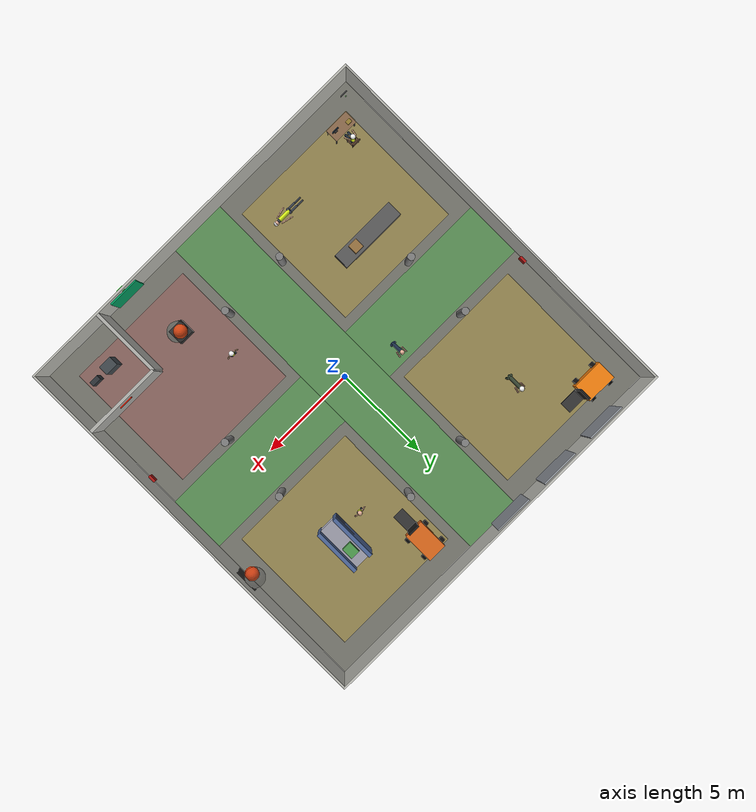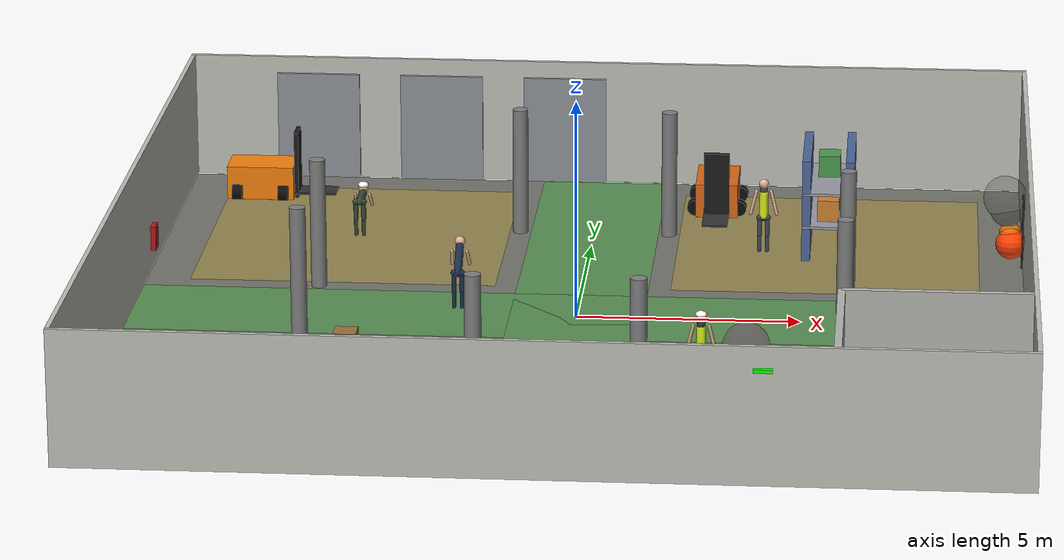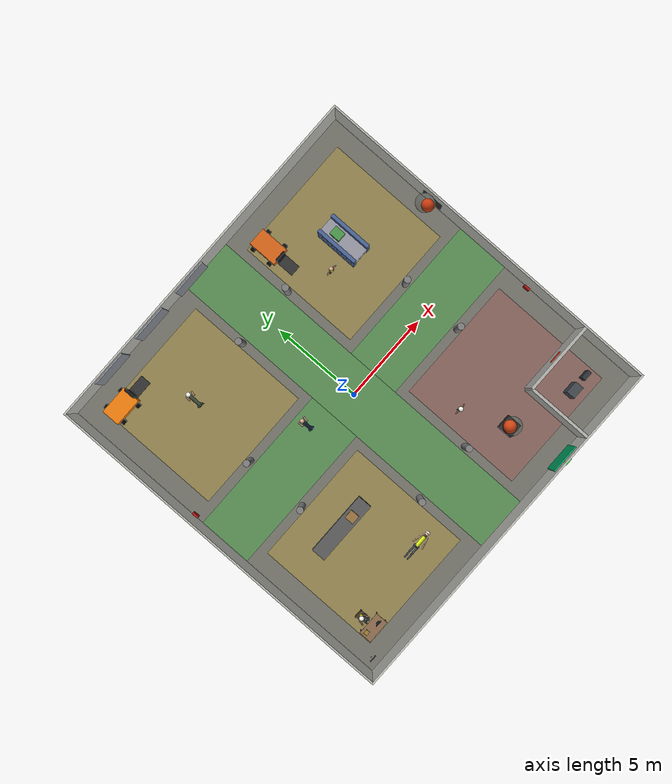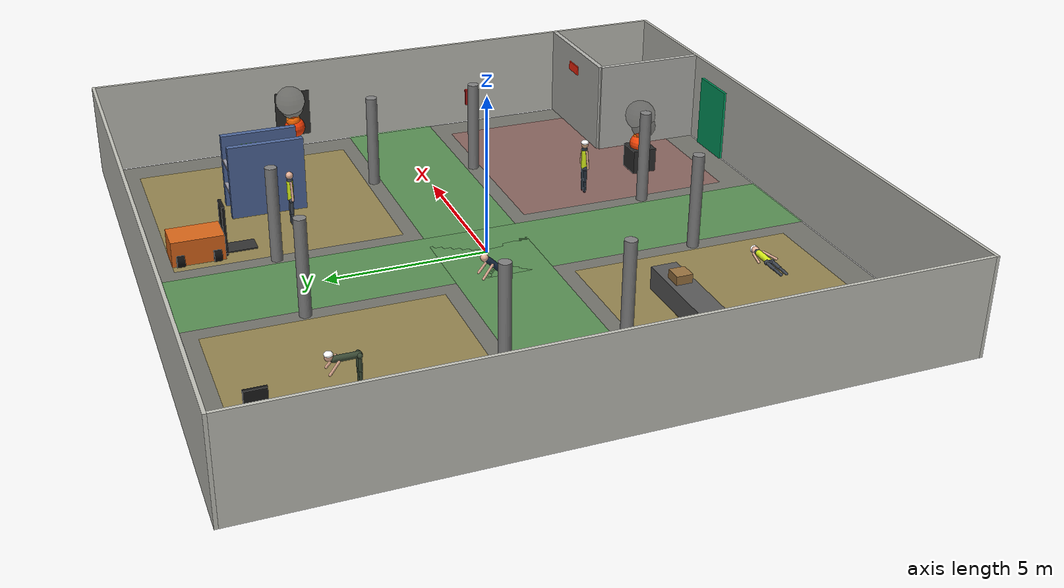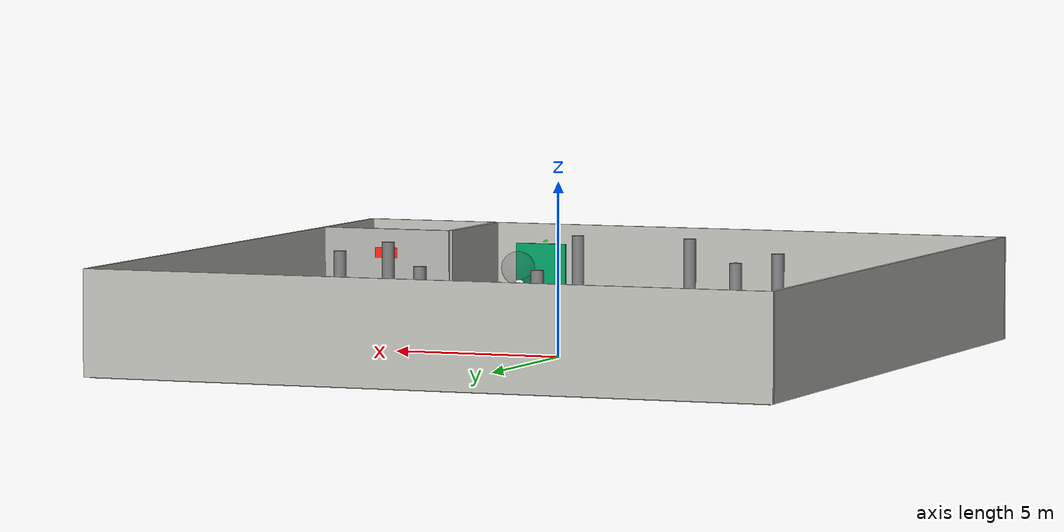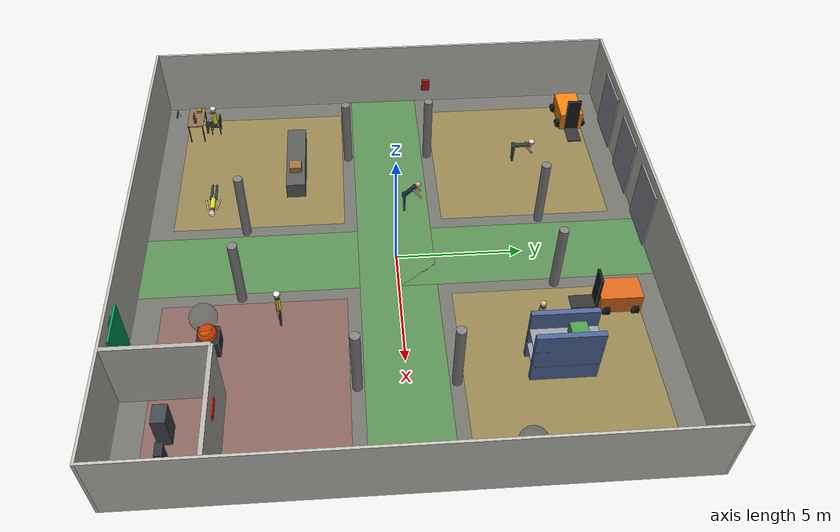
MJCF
<mujoco model="industrial_factory_20x20_v3">
    <compiler inertiafromgeom="true"/>

    <worldbody>
        <!-- ================================================================
             1. 공장 바닥, 조명 및 십자형 안전 보행로 (20x20m)
             ================================================================ -->
        <geom name="floor" type="plane" size="10 10 0.1" rgba="0.45 0.45 0.42 1" friction="1.0 0.005 0.0001"/>

        <light directional="true" diffuse=".8 .8 .8" specular=".3 .3 .3" pos="0 0 8" dir="0 0 -1"/>
        <light directional="false" diffuse=".4 .4 .4" specular=".1 .1 .1" pos="6 6 5" dir="-0.3 -0.3 -1"/>
        <light directional="false" diffuse=".4 .4 .4" specular=".1 .1 .1" pos="-6 6 5" dir="0.3 -0.3 -1"/>
        <light directional="false" diffuse=".4 .4 .4" specular=".1 .1 .1" pos="-6 -6 5" dir="0.3 0.3 -1"/>
        <light directional="false" diffuse=".4 .4 .4" specular=".1 .1 .1" pos="6 -6 5" dir="-0.3 0.3 -1"/>

        <!-- 십자형 메인 안전 보행로 & 차로 -->
        <geom name="walkway_cross_y" type="box" size="1.5 10.0 0.001" pos="0 0 0.001" rgba="0.2 0.8 0.2 0.35" contype="0" conaffinity="0"/>
        <geom name="walkway_cross_x" type="box" size="10.0 1.5 0.001" pos="0 0 0.001" rgba="0.2 0.8 0.2 0.35" contype="0" conaffinity="0"/>

        <!-- 구역 구획선 -->
        <geom name="zone_nw_inbound" type="box" size="3.5 3.5 0.001" pos="-5.5 5.5 0.001" rgba="0.92 0.72 0.1 0.3" contype="0" conaffinity="0"/>
        <geom name="zone_ne_warehouse" type="box" size="3.5 3.5 0.001" pos="5.5 5.5 0.001" rgba="0.92 0.72 0.1 0.3" contype="0" conaffinity="0"/>
        <geom name="zone_sw_production" type="box" size="3.5 3.5 0.001" pos="-5.5 -5.5 0.001" rgba="0.92 0.72 0.1 0.3" contype="0" conaffinity="0"/>
        <geom name="zone_se_utility" type="box" size="3.5 3.5 0.001" pos="5.5 -5.5 0.001" rgba="0.9 0.2 0.2 0.2" contype="0" conaffinity="0"/>

        <!-- ================================================================
             2. 외벽 및 구조 기둥 (8개 균등 배치)
             ================================================================ -->
        <geom name="wall_north" type="box" size="10.1 0.05 1.5" pos="0 10.05 1.5" rgba="0.75 0.75 0.72 1"/>
        <geom name="wall_south" type="box" size="10.1 0.05 1.5" pos="0 -10.05 1.5" rgba="0.75 0.75 0.72 1"/>
        <geom name="wall_east" type="box" size="0.05 10.0 1.5" pos="10.05 0 1.5" rgba="0.75 0.75 0.72 1"/>
        <geom name="wall_west" type="box" size="0.05 10.0 1.5" pos="-10.05 0 1.5" rgba="0.75 0.75 0.72 1"/>

        <body name="column_1" pos="-6 1.75 0"><geom type="cylinder" size="0.18 1.5" pos="0 0 1.5" rgba="0.5 0.5 0.5 1" mass="100"/></body>
        <body name="column_2" pos="-1.75 6 0"><geom type="cylinder" size="0.18 1.5" pos="0 0 1.5" rgba="0.5 0.5 0.5 1" mass="100"/></body>
        <body name="column_3" pos="1.75 6 0"><geom type="cylinder" size="0.18 1.5" pos="0 0 1.5" rgba="0.5 0.5 0.5 1" mass="100"/></body>
        <body name="column_4" pos="6 1.75 0"><geom type="cylinder" size="0.18 1.5" pos="0 0 1.5" rgba="0.5 0.5 0.5 1" mass="100"/></body>
        <body name="column_5" pos="-6 -1.75 0"><geom type="cylinder" size="0.18 1.5" pos="0 0 1.5" rgba="0.5 0.5 0.5 1" mass="100"/></body>
        <body name="column_6" pos="-1.75 -6 0"><geom type="cylinder" size="0.18 1.5" pos="0 0 1.5" rgba="0.5 0.5 0.5 1" mass="100"/></body>
        <body name="column_7" pos="1.75 -6 0"><geom type="cylinder" size="0.18 1.5" pos="0 0 1.5" rgba="0.5 0.5 0.5 1" mass="100"/></body>
        <body name="column_8" pos="6 -1.75 0"><geom type="cylinder" size="0.18 1.5" pos="0 0 1.5" rgba="0.5 0.5 0.5 1" mass="100"/></body>

        <!-- ================================================================
             3. 물류 인프라, 로봇 충전 스테이션 & 지게차 2대
             ================================================================ -->
        <!-- 로봇 충전 스테이션 -->
        <body name="charging_station" pos="-9.5 -9.5 0">
            <geom name="station_body" type="box" size="0.2 0.02 0.075" pos="0 -0.13 0.075" rgba="0.3 0.3 0.3 1" mass="2.0"/>
            <site name="docking_port" pos="0 0 0.01" size="0.03" rgba="0 1 0 0.3"/>
        </body>

        <!-- 하역장 셔터 도어 -->
        <body name="dock_door_1" pos="-7 10 0"><geom type="box" size="1.0 0.08 1.3" pos="0 0 1.3" rgba="0.55 0.57 0.6 1"/></body>
        <body name="dock_door_2" pos="-4 10 0"><geom type="box" size="1.0 0.08 1.3" pos="0 0 1.3" rgba="0.55 0.57 0.6 1"/></body>
        <body name="dock_door_3" pos="-1 10 0"><geom type="box" size="1.0 0.08 1.3" pos="0 0 1.3" rgba="0.55 0.57 0.6 1"/></body>

        <!-- 지게차 1 (NW) -->
        <body name="forklift_1" pos="-8.2 8.5 0">
            <freejoint name="fl1_freejoint"/>
            <inertial pos="0 0 0.5" mass="260" diaginertia="100 100 100"/>
            <geom name="fl1_body" type="box" size="0.8 0.5 0.4" pos="0 0 0.4" rgba="0.95 0.5 0.05 1"/>
            <geom name="fl1_fork" type="box" size="0.5 0.3 0.02" pos="1.3 0 0.1" rgba="0.2 0.2 0.2 1"/>
            <geom name="fl1_mast" type="box" size="0.05 0.3 0.8" pos="0.85 0 0.8" rgba="0.1 0.1 0.1 1"/>
            <geom name="fl1_wheel_fl" type="cylinder" size="0.18 0.12" pos="0.55 0.52 0.18" quat="0.7071 0 0.7071 0" rgba="0.05 0.05 0.05 1"/>
            <geom name="fl1_wheel_fr" type="cylinder" size="0.18 0.12" pos="0.55 -0.52 0.18" quat="0.7071 0 0.7071 0" rgba="0.05 0.05 0.05 1"/>
            <geom name="fl1_wheel_rl" type="cylinder" size="0.18 0.12" pos="-0.55 0.52 0.18" quat="0.7071 0 0.7071 0" rgba="0.05 0.05 0.05 1"/>
            <geom name="fl1_wheel_rr" type="cylinder" size="0.18 0.12" pos="-0.55 -0.52 0.18" quat="0.7071 0 0.7071 0" rgba="0.05 0.05 0.05 1"/>
        </body>

        <!-- 지게차 2 (NE) -->
        <body name="forklift_2" pos="2.8 8.2 0" quat="0.7071 0 0 -0.7071">
            <freejoint name="fl2_freejoint"/>
            <inertial pos="0 0 0.5" mass="260" diaginertia="100 100 100"/>
            <geom name="fl2_body" type="box" size="0.8 0.5 0.4" pos="0 0 0.4" rgba="0.85 0.4 0.1 1"/>
            <geom name="fl2_fork" type="box" size="0.5 0.3 0.02" pos="1.3 0 0.1" rgba="0.2 0.2 0.2 1"/>
            <geom name="fl2_mast" type="box" size="0.05 0.3 0.8" pos="0.85 0 0.8" rgba="0.1 0.1 0.1 1"/>
            <geom name="fl2_wheel_fl" type="cylinder" size="0.18 0.12" pos="0.55 0.52 0.18" quat="0.7071 0 0.7071 0" rgba="0.05 0.05 0.05 1"/>
            <geom name="fl2_wheel_fr" type="cylinder" size="0.18 0.12" pos="0.55 -0.52 0.18" quat="0.7071 0 0.7071 0" rgba="0.05 0.05 0.05 1"/>
            <geom name="fl2_wheel_rl" type="cylinder" size="0.18 0.12" pos="-0.55 0.52 0.18" quat="0.7071 0 0.7071 0" rgba="0.05 0.05 0.05 1"/>
            <geom name="fl2_wheel_rr" type="cylinder" size="0.18 0.12" pos="-0.55 -0.52 0.18" quat="0.7071 0 0.7071 0" rgba="0.05 0.05 0.05 1"/>
        </body>

        <!-- 파렛트 랙 -->
        <body name="pallet_rack_1" pos="5.5 5.5 0">
            <geom type="box" size="0.1 1.2 1.2" pos="-0.5 0 1.2" rgba="0.3 0.4 0.6 1"/>
            <geom type="box" size="0.1 1.2 1.2" pos="0.5 0 1.2" rgba="0.3 0.4 0.6 1"/>
            <geom type="box" size="0.6 1.2 0.03" pos="0 0 0.8" rgba="0.6 0.6 0.65 1"/>
            <geom type="box" size="0.6 1.2 0.03" pos="0 0 1.6" rgba="0.6 0.6 0.65 1"/>
            <geom type="box" size="0.25 0.3 0.25" pos="0 -0.5 1.08" rgba="0.8 0.5 0.2 1"/>
            <geom type="box" size="0.25 0.3 0.25" pos="0 0.4 1.88" rgba="0.3 0.6 0.3 1"/>
        </body>

        <!-- ================================================================
             4. 책상, 의자, 앉아있는 작업자 세트
             ================================================================ -->
        <body name="workbench_0" pos="-8.2 -8.5 0">
            <geom name="wb0_top" type="box" size="0.65 0.35 0.02" pos="0 0 0.90" rgba="0.55 0.42 0.30 1" mass="20.0"/>
            <geom name="wb0_leg_fl" type="cylinder" size="0.025 0.45" pos="-0.60 -0.30 0.45" rgba="0.40 0.40 0.40 1" mass="3.0"/>
            <geom name="wb0_leg_fr" type="cylinder" size="0.025 0.45" pos="0.60 -0.30 0.45" rgba="0.40 0.40 0.40 1" mass="3.0"/>
            <geom name="wb0_leg_bl" type="cylinder" size="0.025 0.45" pos="-0.60 0.30 0.45" rgba="0.40 0.40 0.40 1" mass="3.0"/>
            <geom name="wb0_leg_br" type="cylinder" size="0.025 0.45" pos="0.60 0.30 0.45" rgba="0.40 0.40 0.40 1" mass="3.0"/>
            <geom name="wb0_tool_box" type="box" size="0.12 0.10 0.06" pos="-0.40 0.10 0.98" rgba="0.60 0.50 0.20 1" mass="2.0"/>
            <geom name="wb0_monitor_base" type="box" size="0.08 0.05 0.10" pos="0.35 0 0.98" rgba="0.20 0.20 0.20 1" mass="1.5"/>
            <geom name="wb0_monitor_screen" type="box" size="0.18 0.02 0.14" pos="0.35 -0.03 1.16" rgba="0.10 0.15 0.20 1" mass="3.0"/>
        </body>

        <body name="chair_0" pos="-8.2 -7.7 0">
            <geom name="ch0_seat" type="box" size="0.22 0.22 0.025" pos="0 0 0.47" rgba="0.35 0.25 0.18 1" mass="4.0"/>
            <geom name="ch0_back" type="box" size="0.22 0.025 0.20" pos="0 0.22 0.68" rgba="0.35 0.25 0.18 1" mass="3.0"/>
            <geom name="ch0_leg_fl" type="cylinder" size="0.018 0.235" pos="-0.19 -0.19 0.235" rgba="0.30 0.30 0.30 1" mass="1.0"/>
            <geom name="ch0_leg_fr" type="cylinder" size="0.018 0.235" pos="0.19 -0.19 0.235" rgba="0.30 0.30 0.30 1" mass="1.0"/>
            <geom name="ch0_leg_bl" type="cylinder" size="0.018 0.235" pos="-0.19 0.19 0.235" rgba="0.30 0.30 0.30 1" mass="1.0"/>
            <geom name="ch0_leg_br" type="cylinder" size="0.018 0.235" pos="0.19 0.19 0.235" rgba="0.30 0.30 0.30 1" mass="1.0"/>
        </body>

        <body name="worker_seated" pos="-8.2 -7.7 0">
            <geom name="ws_pelvis" type="capsule" fromto="-0.09 0 0.50 0.09 0 0.50" size="0.075" rgba="0.15 0.20 0.25 1" mass="8.0"/>
            <geom name="ws_luleg" type="capsule" fromto="-0.09 0 0.50 -0.09 -0.40 0.50" size="0.055" rgba="0.15 0.20 0.25 1" mass="8.0"/>
            <geom name="ws_llleg" type="capsule" fromto="-0.09 -0.40 0.50 -0.09 -0.40 0.08" size="0.045" rgba="0.15 0.20 0.25 1" mass="4.0"/>
            <geom name="ws_ruleg" type="capsule" fromto="0.09 0 0.50 0.09 -0.40 0.50" size="0.055" rgba="0.15 0.20 0.25 1" mass="8.0"/>
            <geom name="ws_rlleg" type="capsule" fromto="0.09 -0.40 0.50 0.09 -0.40 0.08" size="0.045" rgba="0.15 0.20 0.25 1" mass="4.0"/>
            <geom name="ws_torso" type="capsule" fromto="0 0 0.52 0 0 1.15" size="0.092" rgba="0.15 0.20 0.25 1" mass="30.0"/>
            <geom name="ws_vest" type="capsule" fromto="0 0 0.54 0 0 1.10" size="0.100" rgba="0.85 0.95 0.10 0.90" mass="0.1" contype="0" conaffinity="0"/>
            <geom name="ws_head" type="sphere" size="0.115" pos="0 0 1.28" rgba="0.82 0.65 0.50 1" mass="5.0"/>
            <geom name="ws_helmet" type="ellipsoid" size="0.125 0.125 0.075" pos="0 0 1.36" rgba="1.0 1.0 1.0 1" mass="0.5" contype="0" conaffinity="0"/>
            <geom name="ws_larm" type="capsule" fromto="-0.17 0 1.10 -0.25 -0.30 0.92" size="0.037" rgba="0.82 0.65 0.50 1" mass="4.0"/>
            <geom name="ws_rarm" type="capsule" fromto="0.17 0 1.10 0.25 -0.30 0.92" size="0.037" rgba="0.82 0.65 0.50 1" mass="4.0"/>
        </body>

        <!-- ================================================================
             5. 작업자 조건 세분화 반영 (총 5명)
             ================================================================ -->
        <!-- 0) 정상 PPE 작업자: 안전모 O, 조끼 O -->
        <body name="worker_normal" pos="3 -4.5 0">
            <geom name="wn_head" type="sphere" size="0.115" pos="0 0 1.62" rgba="0.82 0.65 0.50 1" mass="5.0"/>
            <geom name="wn_helmet" type="ellipsoid" size="0.125 0.125 0.075" pos="0 0 1.70" rgba="1.0 1.0 1.0 1" mass="0.5"/>
            <geom name="wn_torso" type="capsule" fromto="0 0 0.82 0 0 1.48" size="0.092" rgba="0.15 0.20 0.25 1" mass="30.0"/>
            <geom name="wn_vest" type="capsule" fromto="0 0 0.84 0 0 1.40" size="0.100" rgba="0.85 0.95 0.10 0.90" mass="0.1" contype="0" conaffinity="0"/>
            <geom name="wn_pelvis" type="capsule" fromto="-0.09 0 0.80 0.09 0 0.80" size="0.075" rgba="0.15 0.20 0.25 1" mass="8.0"/>
            <geom name="wn_luleg" type="capsule" fromto="-0.09 0 0.80 -0.09 0 0.38" size="0.055" rgba="0.15 0.20 0.25 1" mass="8.0"/>
            <geom name="wn_llleg" type="capsule" fromto="-0.09 0 0.38 -0.09 0 0.00" size="0.045" rgba="0.15 0.20 0.25 1" mass="4.0"/>
            <geom name="wn_ruleg" type="capsule" fromto="0.09 0 0.80 0.09 0 0.38" size="0.055" rgba="0.15 0.20 0.25 1" mass="8.0"/>
            <geom name="wn_rlleg" type="capsule" fromto="0.09 0 0.38 0.09 0 0.00" size="0.045" rgba="0.15 0.20 0.25 1" mass="4.0"/>
            <geom name="wn_larm" type="capsule" fromto="-0.17 0 1.44 -0.30 0 0.90" size="0.037" rgba="0.82 0.65 0.50 1" mass="4.0"/>
            <geom name="wn_rarm" type="capsule" fromto="0.17 0 1.44 0.30 0 0.90" size="0.037" rgba="0.82 0.65 0.50 1" mass="4.0"/>
        </body>

        <!-- 1) 불량 PPE 작업자: 안전모 X, 조끼 O -->
        <body name="worker_bad_ppe" pos="4 5 0">
            <geom name="wp_head" type="sphere" size="0.115" pos="0 0 1.62" rgba="0.90 0.70 0.60 1" mass="5.0"/>
            <geom name="wp_torso" type="capsule" fromto="0 0 0.82 0 0 1.48" size="0.092" rgba="0.25 0.28 0.32 1" mass="30.0"/>
            <geom name="wp_vest" type="capsule" fromto="0 0 0.84 0 0 1.40" size="0.100" rgba="0.85 0.95 0.10 0.90" mass="0.1" contype="0" conaffinity="0"/>
            <geom name="wp_pelvis" type="capsule" fromto="-0.09 0 0.80 0.09 0 0.80" size="0.075" rgba="0.25 0.28 0.32 1" mass="8.0"/>
            <geom name="wp_luleg" type="capsule" fromto="-0.09 0 0.80 -0.09 0 0.38" size="0.055" rgba="0.25 0.28 0.32 1" mass="8.0"/>
            <geom name="wp_llleg" type="capsule" fromto="-0.09 0 0.38 -0.09 0 0.00" size="0.045" rgba="0.25 0.28 0.32 1" mass="4.0"/>
            <geom name="wp_ruleg" type="capsule" fromto="0.09 0 0.80 0.09 0 0.38" size="0.055" rgba="0.25 0.28 0.32 1" mass="8.0"/>
            <geom name="wp_rlleg" type="capsule" fromto="0.09 0 0.38 0.09 0 0.00" size="0.045" rgba="0.25 0.28 0.32 1" mass="4.0"/>
            <geom name="wp_larm" type="capsule" fromto="-0.17 0 1.44 -0.30 0 0.90" size="0.037" rgba="0.90 0.70 0.60 1" mass="4.0"/>
            <geom name="wp_rarm" type="capsule" fromto="0.17 0 1.44 0.30 0 0.90" size="0.037" rgba="0.90 0.70 0.60 1" mass="4.0"/>
        </body>

        <!-- 2) 쓰러진 작업자: 안전모 O, 조끼 O -->
        <body name="worker_fallen" pos="-4.5 -7.5 0.115" quat="0.5 0.5 0.5 0.5">
            <geom name="wf_head" type="sphere" size="0.115" pos="0 0 1.62" rgba="0.90 0.70 0.60 1" mass="5.0"/>
            <geom name="wf_helmet" type="ellipsoid" size="0.125 0.125 0.075" pos="0 0 1.70" rgba="1.0 1.0 1.0 1" mass="0.5" contype="0" conaffinity="0"/>
            <geom name="wf_torso" type="capsule" fromto="0 0 0.82 0 0 1.48" size="0.092" rgba="0.25 0.28 0.32 1" mass="30.0"/>
            <geom name="wf_vest" type="capsule" fromto="0 0 0.84 0 0 1.40" size="0.100" rgba="0.85 0.95 0.10 0.90" mass="0.1" contype="0" conaffinity="0"/>
            <geom name="wf_pelvis" type="capsule" fromto="-0.09 0 0.80 0.09 0 0.80" size="0.075" rgba="0.25 0.28 0.32 1" mass="8.0"/>
            <geom name="wf_luleg" type="capsule" fromto="-0.09 0 0.80 -0.09 0 0.38" size="0.055" rgba="0.25 0.28 0.32 1" mass="8.0"/>
            <geom name="wf_llleg" type="capsule" fromto="-0.09 0 0.38 -0.09 0 0.00" size="0.045" rgba="0.25 0.28 0.32 1" mass="4.0"/>
            <geom name="wf_ruleg" type="capsule" fromto="0.09 0 0.80 0.09 0 0.38" size="0.055" rgba="0.25 0.28 0.32 1" mass="8.0"/>
            <geom name="wf_rlleg" type="capsule" fromto="0.09 0 0.38 0.09 0 0.00" size="0.045" rgba="0.25 0.28 0.32 1" mass="4.0"/>
            <geom name="wf_larm" type="capsule" fromto="-0.17 0 1.44 -0.30 0 0.90" size="0.037" rgba="0.90 0.70 0.60 1" mass="4.0"/>
            <geom name="wf_rarm" type="capsule" fromto="0.17 0 1.44 0.30 0 0.90" size="0.037" rgba="0.90 0.70 0.60 1" mass="4.0"/>
        </body>

        <!-- 3) 45도 Bending 작업자: 안전모 X, 조끼 X -->
        <body name="bending_worker_45" pos="-2.7 0.5 0">
            <geom name="bw45_luleg" type="capsule" fromto="-0.09 0 0.80 -0.09 0 0.38" size="0.055" rgba="0.10 0.18 0.28 1" mass="8.0"/>
            <geom name="bw45_llleg" type="capsule" fromto="-0.09 0 0.38 -0.09 0 0.00" size="0.045" rgba="0.10 0.18 0.28 1" mass="4.0"/>
            <geom name="bw45_ruleg" type="capsule" fromto="0.09 0 0.80 0.09 0 0.38" size="0.055" rgba="0.10 0.18 0.28 1" mass="8.0"/>
            <geom name="bw45_rlleg" type="capsule" fromto="0.09 0 0.38 0.09 0 0.00" size="0.045" rgba="0.10 0.18 0.28 1" mass="4.0"/>
            <geom name="bw45_pelvis" type="capsule" fromto="-0.09 0 0.80 0.09 0 0.80" size="0.075" rgba="0.10 0.18 0.28 1" mass="8.0"/>
            <geom name="bw45_torso" type="capsule" fromto="0 0 0.80 0 0.467 1.267" size="0.092" rgba="0.10 0.18 0.28 1" mass="30.0"/>
            <geom name="bw45_head" type="sphere" size="0.115" pos="0 0.58 1.36" rgba="0.90 0.70 0.60 1" mass="5.0"/>
            <geom name="bw45_larm" type="capsule" fromto="-0.17 0.40 1.18 -0.20 0.68 0.80" size="0.037" rgba="0.90 0.70 0.60 1" mass="4.0"/>
            <geom name="bw45_rarm" type="capsule" fromto="0.17 0.40 1.18 0.20 0.68 0.80" size="0.037" rgba="0.90 0.70 0.60 1" mass="4.0"/>
        </body>

        <!-- 4) 90도 Bending 작업자: 안전모 O, 조끼 X -->
        <body name="bending_worker_90" pos="-5.5 5.5 0">
            <geom name="bw90_luleg" type="capsule" fromto="-0.09 0 0.80 -0.09 0 0.38" size="0.055" rgba="0.22 0.28 0.20 1" mass="8.0"/>
            <geom name="bw90_llleg" type="capsule" fromto="-0.09 0 0.38 -0.09 0 0.00" size="0.045" rgba="0.22 0.28 0.20 1" mass="4.0"/>
            <geom name="bw90_ruleg" type="capsule" fromto="0.09 0 0.80 0.09 0 0.38" size="0.055" rgba="0.22 0.28 0.20 1" mass="8.0"/>
            <geom name="bw90_rlleg" type="capsule" fromto="0.09 0 0.38 0.09 0 0.00" size="0.045" rgba="0.22 0.28 0.20 1" mass="4.0"/>
            <geom name="bw90_pelvis" type="capsule" fromto="-0.09 0 0.80 0.09 0 0.80" size="0.075" rgba="0.22 0.28 0.20 1" mass="8.0"/>
            <geom name="bw90_torso" type="capsule" fromto="0 0 0.80 0 0.66 0.80" size="0.092" rgba="0.22 0.28 0.20 1" mass="30.0"/>
            <geom name="bw90_head" type="sphere" size="0.115" pos="0 0.79 0.89" rgba="0.85 0.65 0.55 1" mass="5.0"/>
            <geom name="bw90_helmet" type="ellipsoid" size="0.125 0.125 0.075" pos="0 0.79 0.97" rgba="1.0 1.0 1.0 1" mass="0.5" contype="0" conaffinity="0"/>
            <geom name="bw90_larm" type="capsule" fromto="-0.17 0.56 0.80 -0.20 0.82 0.48" size="0.037" rgba="0.85 0.65 0.55 1" mass="4.0"/>
            <geom name="bw90_rarm" type="capsule" fromto="0.17 0.56 0.80 0.20 0.82 0.48" size="0.037" rgba="0.85 0.65 0.55 1" mass="4.0"/>
        </body>

        <!-- ================================================================
             6. 화재 시뮬레이션 2곳 (SE 화물 + 동쪽 벽면)
             ================================================================ -->
        <!-- 화재 1: SE 화물 발화 -->
        <body name="fire_zone_cargo" pos="4.0 -7.0 0">
            <geom name="burning_cargo" type="box" size="0.4 0.4 0.4" pos="0 0 0.4" rgba="0.18 0.18 0.18 1" mass="30"/>
            <geom name="flame_base" type="sphere" size="0.35" pos="0 0 0.9" rgba="1.0 0.28 0.03 0.9" contype="0" conaffinity="0"/>
            <geom name="flame_mid" type="sphere" size="0.25" pos="0.03 -0.02 1.1" rgba="1.0 0.55 0.06 0.8" contype="0" conaffinity="0"/>
            <geom name="flame_top" type="sphere" size="0.18" pos="-0.02 0.02 1.3" rgba="1.0 0.85 0.18 0.7" contype="0" conaffinity="0"/>
            <geom name="smoke_1" type="sphere" size="0.4" pos="-0.08 -0.05 1.55" rgba="0.18 0.18 0.18 0.35" contype="0" conaffinity="0"/>
            <geom name="smoke_2" type="sphere" size="0.5" pos="0.05 0.02 1.9" rgba="0.25 0.25 0.25 0.22" contype="0" conaffinity="0"/>
        </body>

        <!-- 화재 2: 동쪽 벽면 발화 -->
        <body name="fire_zone_wall" pos="9.7 3.5 0">
            <geom name="wall_scorch" type="box" size="0.02 0.6 0.8" pos="0.25 0 1.2" rgba="0.1 0.1 0.1 0.8" contype="0" conaffinity="0"/>
            <geom name="wflame_base" type="sphere" size="0.35" pos="0 0 0.80" rgba="1.0 0.25 0.02 0.90" contype="0" conaffinity="0"/>
            <geom name="wflame_mid" type="sphere" size="0.25" pos="-0.02 0.05 1.05" rgba="1.0 0.50 0.05 0.80" contype="0" conaffinity="0"/>
            <geom name="wflame_top" type="sphere" size="0.18" pos="-0.04 0.08 1.25" rgba="1.0 0.80 0.15 0.70" contype="0" conaffinity="0"/>
            <geom name="wsmoke_1" type="sphere" size="0.4" pos="-0.10 0.10 1.60" rgba="0.2 0.2 0.2 0.4" contype="0" conaffinity="0"/>
            <geom name="wsmoke_2" type="sphere" size="0.5" pos="-0.15 0.15 1.85" rgba="0.25 0.25 0.25 0.25" contype="0" conaffinity="0"/>
        </body>

        <!-- ================================================================
             7. 기타 부대 설비 (컨베이어, 전기실, 소화기함)
             ================================================================ -->
        <body name="conveyor_belt" pos="-5.5 -4.0 0">
            <geom name="conveyor_frame" type="box" size="1.8 0.4 0.35" pos="0 0 0.35" rgba="0.35 0.35 0.35 1" mass="80.0"/>
            <geom name="conveyor_surface" type="box" size="1.75 0.35 0.02" pos="0 0 0.55" rgba="0.1 0.1 0.1 1" contype="0" conaffinity="0"/>
            <geom name="conveyor_cargo" type="box" size="0.25 0.25 0.2" pos="0.8 0 0.77" rgba="0.6 0.45 0.25 1" mass="10.0"/>
        </body>

        <body name="utility_room">
            <geom name="utility_north_wall" type="box" size="2.0 0.08 1.5" pos="8.0 -6.4 1.5" rgba="0.70 0.70 0.68 1"/>
            <geom name="utility_west_wall" type="box" size="0.08 1.8 1.5" pos="6.0 -8.2 1.5" rgba="0.70 0.70 0.68 1"/>
            <geom name="utility_panel" type="box" size="0.35 0.25 0.70" pos="7.5 -8.2 0.70" rgba="0.25 0.28 0.30 1" mass="30.0"/>
            <geom name="utility_control" type="box" size="0.25 0.12 0.45" pos="8.5 -8.2 0.45" rgba="0.18 0.20 0.22 1" mass="15.0"/>
            <site name="utility_warning" type="box" pos="8.0 -6.28 2.3" size="0.35 0.02 0.15" rgba="1 0.15 0.05 0.9"/>
        </body>

        <body name="emergency_exit" pos="4.5 -10.0 0">
            <geom name="exit_door" type="box" size="0.8 0.08 1.2" pos="0 0 1.2" rgba="0.0 0.62 0.38 1"/>
            <site name="exit_sign" pos="0 -0.1 2.5" size="0.2 0.1 0.04" type="box" rgba="0 1 0 0.9"/>
        </body>

        <body name="fire_extinguisher_se" pos="9.8 -3.0 0"><geom type="box" size="0.06 0.18 0.28" pos="0 0 1.0" rgba="0.69 0.09 0.08 1" mass="5.0"/></body>
        <body name="fire_extinguisher_nw" pos="-9.8 2.0 0"><geom type="box" size="0.06 0.18 0.28" pos="0 0 1.0" rgba="0.69 0.09 0.08 1" mass="5.0"/></body>

    </worldbody>
</mujoco>
